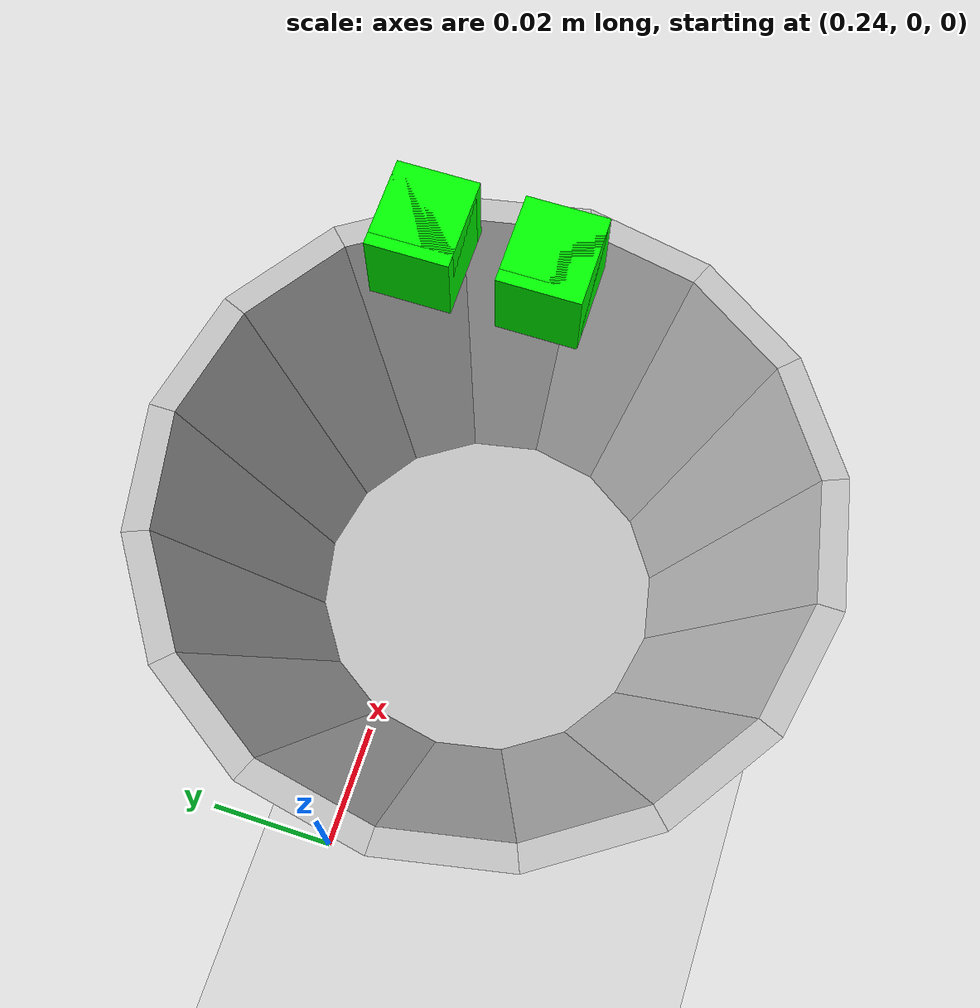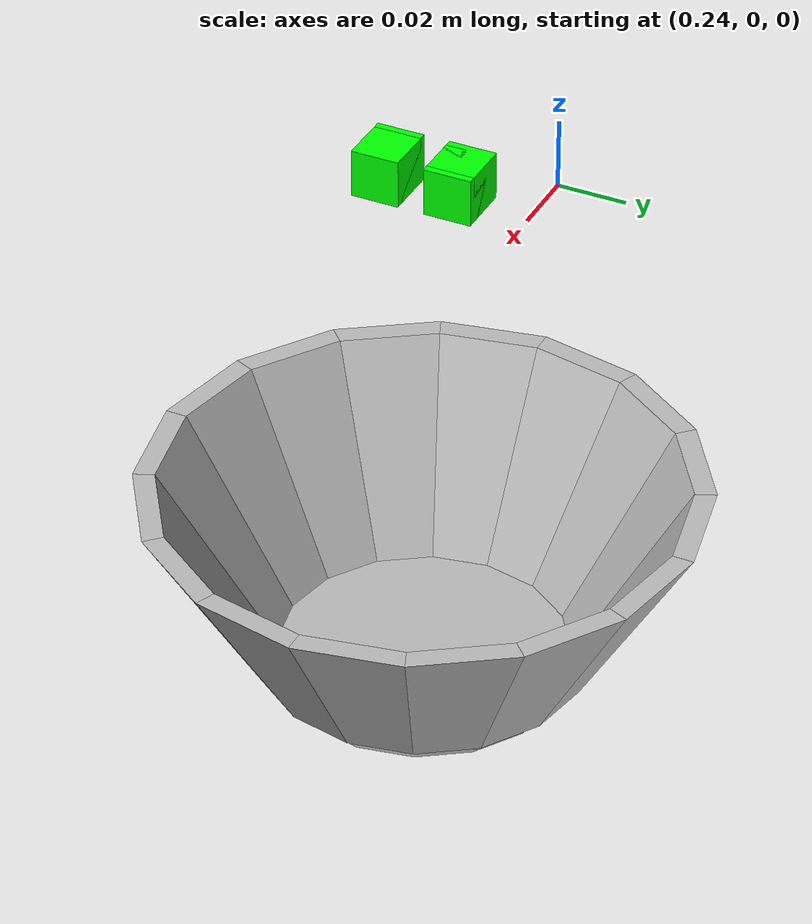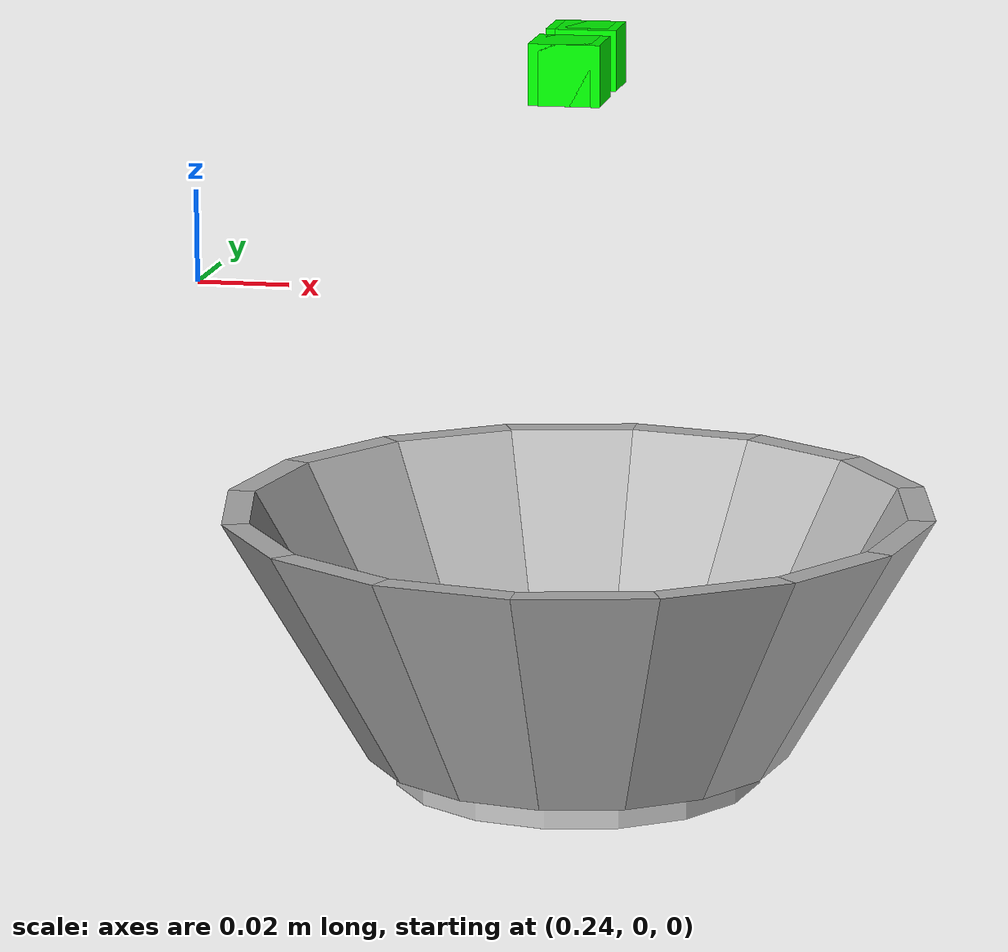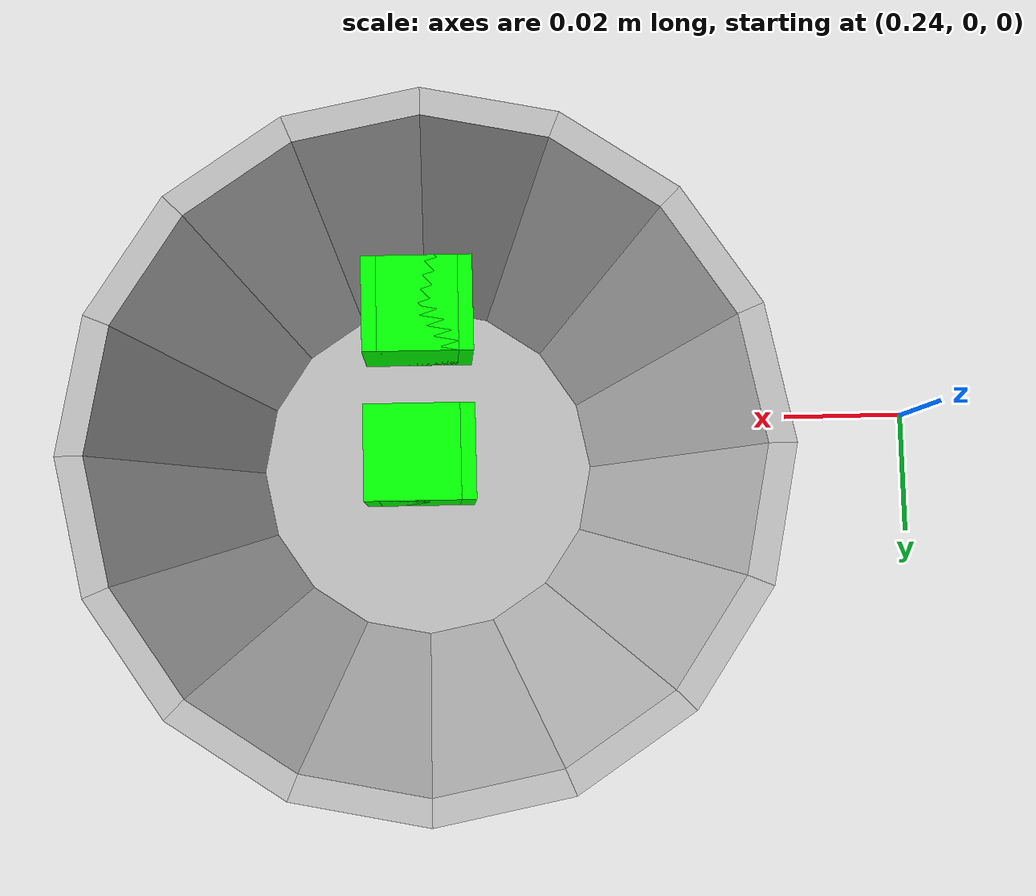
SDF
<?xml version="1.0" ?>
<sdf version="1.7">
  <world name="stir_world">
    <scene>
      <shadows>0</shadows>
    </scene>

    <include>
      <uri>model://sun</uri>
    </include>

    <model name="ground_plane">
      <include>
        <uri>model://ground_plane</uri>
        <pose>0 0 -0.5 0 0 0</pose>
      </include>
    </model>

    <model name="cooking_bowl">
      <include>
        <uri>model://cooking_bowl</uri>
        <pose>0.323 0 -0.106 0 0 0</pose>
        <static>true</static>
      </include>
    </model>

    <model name="ingredient0">
      <include>
        <uri>model://ingredient_cube</uri>
        <pose>0.324 0.01 0.05 0 0 0</pose>
      </include>
    </model>

    <model name="ingredient1">
      <include>
        <uri>model://ingredient_cube</uri>
        <pose>0.324 -0.01 0.05 0 0 0</pose>
      </include>
    </model>

    <model name="ingredient2">
      <include>
        <uri>model://ingredient_cube</uri>
        <pose>0.322 0.01 0.05 0 0 0</pose>
      </include>
    </model>

    <model name="ingredient3">
      <include>
        <uri>model://ingredient_cube</uri>
        <pose>0.322 -0.01 0.05 0 0 0</pose>
      </include>
    </model>

    <plugin name="gazebo_bridge" filename="libgazebo_bridge.so"/>
  </world>
</sdf>

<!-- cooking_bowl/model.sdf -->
<sdf version="1.7">
  <model name="cooking_bowl">
    <pose>0 0 0 0 0 0</pose>
    <static>true</static>
    <link name="bottom_plate">
      <inertial>
        <mass>0.01</mass>
      </inertial>
      <collision name="collision">
        <geometry>
          <mesh>
            <uri>model://cooking_bowl/meshes/cooking_bowl_bottom.stl</uri>
          </mesh>
        </geometry>
      </collision>
      <visual name="visual">
        <geometry>
          <mesh>
            <uri>model://cooking_bowl/meshes/cooking_bowl_bottom.stl</uri>
          </mesh>
        </geometry>
      </visual>
    </link>
    <link name="side_fragment_0">
      <inertial>
        <mass>0.01</mass>
      </inertial>
      <collision name="collision">
       <pose>0 0 0 0 0 0.0</pose>
        <geometry>
          <mesh>
            <uri>model://cooking_bowl/meshes/cooking_bowl_fragment.stl</uri>
          </mesh>
        </geometry>
      </collision>
      <visual name="visual">
       <pose>0 0 0 0 0 0.0</pose>
        <geometry>
          <mesh>
            <uri>model://cooking_bowl/meshes/cooking_bowl_fragment.stl</uri>
          </mesh>
        </geometry>
      </visual>
    </link>
    <link name="side_fragment_1">
      <inertial>
        <mass>0.01</mass>
      </inertial>
      <collision name="collision">
       <pose>0 0 0 0 0 0.39269908169872414</pose>
        <geometry>
          <mesh>
            <uri>model://cooking_bowl/meshes/cooking_bowl_fragment.stl</uri>
          </mesh>
        </geometry>
      </collision>
      <visual name="visual">
       <pose>0 0 0 0 0 0.39269908169872414</pose>
        <geometry>
          <mesh>
            <uri>model://cooking_bowl/meshes/cooking_bowl_fragment.stl</uri>
          </mesh>
        </geometry>
      </visual>
    </link>
    <link name="side_fragment_2">
      <inertial>
        <mass>0.01</mass>
      </inertial>
      <collision name="collision">
       <pose>0 0 0 0 0 0.7853981633974483</pose>
        <geometry>
          <mesh>
            <uri>model://cooking_bowl/meshes/cooking_bowl_fragment.stl</uri>
          </mesh>
        </geometry>
      </collision>
      <visual name="visual">
       <pose>0 0 0 0 0 0.7853981633974483</pose>
        <geometry>
          <mesh>
            <uri>model://cooking_bowl/meshes/cooking_bowl_fragment.stl</uri>
          </mesh>
        </geometry>
      </visual>
    </link>
    <link name="side_fragment_3">
      <inertial>
        <mass>0.01</mass>
      </inertial>
      <collision name="collision">
       <pose>0 0 0 0 0 1.1780972450961724</pose>
        <geometry>
          <mesh>
            <uri>model://cooking_bowl/meshes/cooking_bowl_fragment.stl</uri>
          </mesh>
        </geometry>
      </collision>
      <visual name="visual">
       <pose>0 0 0 0 0 1.1780972450961724</pose>
        <geometry>
          <mesh>
            <uri>model://cooking_bowl/meshes/cooking_bowl_fragment.stl</uri>
          </mesh>
        </geometry>
      </visual>
    </link>
    <link name="side_fragment_4">
      <inertial>
        <mass>0.01</mass>
      </inertial>
      <collision name="collision">
       <pose>0 0 0 0 0 1.5707963267948966</pose>
        <geometry>
          <mesh>
            <uri>model://cooking_bowl/meshes/cooking_bowl_fragment.stl</uri>
          </mesh>
        </geometry>
      </collision>
      <visual name="visual">
       <pose>0 0 0 0 0 1.5707963267948966</pose>
        <geometry>
          <mesh>
            <uri>model://cooking_bowl/meshes/cooking_bowl_fragment.stl</uri>
          </mesh>
        </geometry>
      </visual>
    </link>
    <link name="side_fragment_5">
      <inertial>
        <mass>0.01</mass>
      </inertial>
      <collision name="collision">
       <pose>0 0 0 0 0 1.9634954084936207</pose>
        <geometry>
          <mesh>
            <uri>model://cooking_bowl/meshes/cooking_bowl_fragment.stl</uri>
          </mesh>
        </geometry>
      </collision>
      <visual name="visual">
       <pose>0 0 0 0 0 1.9634954084936207</pose>
        <geometry>
          <mesh>
            <uri>model://cooking_bowl/meshes/cooking_bowl_fragment.stl</uri>
          </mesh>
        </geometry>
      </visual>
    </link>
    <link name="side_fragment_6">
      <inertial>
        <mass>0.01</mass>
      </inertial>
      <collision name="collision">
       <pose>0 0 0 0 0 2.356194490192345</pose>
        <geometry>
          <mesh>
            <uri>model://cooking_bowl/meshes/cooking_bowl_fragment.stl</uri>
          </mesh>
        </geometry>
      </collision>
      <visual name="visual">
       <pose>0 0 0 0 0 2.356194490192345</pose>
        <geometry>
          <mesh>
            <uri>model://cooking_bowl/meshes/cooking_bowl_fragment.stl</uri>
          </mesh>
        </geometry>
      </visual>
    </link>
    <link name="side_fragment_7">
      <inertial>
        <mass>0.01</mass>
      </inertial>
      <collision name="collision">
       <pose>0 0 0 0 0 2.748893571891069</pose>
        <geometry>
          <mesh>
            <uri>model://cooking_bowl/meshes/cooking_bowl_fragment.stl</uri>
          </mesh>
        </geometry>
      </collision>
      <visual name="visual">
       <pose>0 0 0 0 0 2.748893571891069</pose>
        <geometry>
          <mesh>
            <uri>model://cooking_bowl/meshes/cooking_bowl_fragment.stl</uri>
          </mesh>
        </geometry>
      </visual>
    </link>
    <link name="side_fragment_8">
      <inertial>
        <mass>0.01</mass>
      </inertial>
      <collision name="collision">
       <pose>0 0 0 0 0 3.141592653589793</pose>
        <geometry>
          <mesh>
            <uri>model://cooking_bowl/meshes/cooking_bowl_fragment.stl</uri>
          </mesh>
        </geometry>
      </collision>
      <visual name="visual">
       <pose>0 0 0 0 0 3.141592653589793</pose>
        <geometry>
          <mesh>
            <uri>model://cooking_bowl/meshes/cooking_bowl_fragment.stl</uri>
          </mesh>
        </geometry>
      </visual>
    </link>
    <link name="side_fragment_9">
      <inertial>
        <mass>0.01</mass>
      </inertial>
      <collision name="collision">
       <pose>0 0 0 0 0 3.5342917352885173</pose>
        <geometry>
          <mesh>
            <uri>model://cooking_bowl/meshes/cooking_bowl_fragment.stl</uri>
          </mesh>
        </geometry>
      </collision>
      <visual name="visual">
       <pose>0 0 0 0 0 3.5342917352885173</pose>
        <geometry>
          <mesh>
            <uri>model://cooking_bowl/meshes/cooking_bowl_fragment.stl</uri>
          </mesh>
        </geometry>
      </visual>
    </link>
    <link name="side_fragment_10">
      <inertial>
        <mass>0.01</mass>
      </inertial>
      <collision name="collision">
       <pose>0 0 0 0 0 3.9269908169872414</pose>
        <geometry>
          <mesh>
            <uri>model://cooking_bowl/meshes/cooking_bowl_fragment.stl</uri>
          </mesh>
        </geometry>
      </collision>
      <visual name="visual">
       <pose>0 0 0 0 0 3.9269908169872414</pose>
        <geometry>
          <mesh>
            <uri>model://cooking_bowl/meshes/cooking_bowl_fragment.stl</uri>
          </mesh>
        </geometry>
      </visual>
    </link>
    <link name="side_fragment_11">
      <inertial>
        <mass>0.01</mass>
      </inertial>
      <collision name="collision">
       <pose>0 0 0 0 0 4.319689898685965</pose>
        <geometry>
          <mesh>
            <uri>model://cooking_bowl/meshes/cooking_bowl_fragment.stl</uri>
          </mesh>
        </geometry>
      </collision>
      <visual name="visual">
       <pose>0 0 0 0 0 4.319689898685965</pose>
        <geometry>
          <mesh>
            <uri>model://cooking_bowl/meshes/cooking_bowl_fragment.stl</uri>
          </mesh>
        </geometry>
      </visual>
    </link>
    <link name="side_fragment_12">
      <inertial>
        <mass>0.01</mass>
      </inertial>
      <collision name="collision">
       <pose>0 0 0 0 0 4.71238898038469</pose>
        <geometry>
          <mesh>
            <uri>model://cooking_bowl/meshes/cooking_bowl_fragment.stl</uri>
          </mesh>
        </geometry>
      </collision>
      <visual name="visual">
       <pose>0 0 0 0 0 4.71238898038469</pose>
        <geometry>
          <mesh>
            <uri>model://cooking_bowl/meshes/cooking_bowl_fragment.stl</uri>
          </mesh>
        </geometry>
      </visual>
    </link>
    <link name="side_fragment_13">
      <inertial>
        <mass>0.01</mass>
      </inertial>
      <collision name="collision">
       <pose>0 0 0 0 0 5.105088062083414</pose>
        <geometry>
          <mesh>
            <uri>model://cooking_bowl/meshes/cooking_bowl_fragment.stl</uri>
          </mesh>
        </geometry>
      </collision>
      <visual name="visual">
       <pose>0 0 0 0 0 5.105088062083414</pose>
        <geometry>
          <mesh>
            <uri>model://cooking_bowl/meshes/cooking_bowl_fragment.stl</uri>
          </mesh>
        </geometry>
      </visual>
    </link>
    <link name="side_fragment_14">
      <inertial>
        <mass>0.01</mass>
      </inertial>
      <collision name="collision">
       <pose>0 0 0 0 0 5.497787143782138</pose>
        <geometry>
          <mesh>
            <uri>model://cooking_bowl/meshes/cooking_bowl_fragment.stl</uri>
          </mesh>
        </geometry>
      </collision>
      <visual name="visual">
       <pose>0 0 0 0 0 5.497787143782138</pose>
        <geometry>
          <mesh>
            <uri>model://cooking_bowl/meshes/cooking_bowl_fragment.stl</uri>
          </mesh>
        </geometry>
      </visual>
    </link>
    <link name="side_fragment_15">
      <inertial>
        <mass>0.01</mass>
      </inertial>
      <collision name="collision">
       <pose>0 0 0 0 0 5.890486225480862</pose>
        <geometry>
          <mesh>
            <uri>model://cooking_bowl/meshes/cooking_bowl_fragment.stl</uri>
          </mesh>
        </geometry>
      </collision>
      <visual name="visual">
       <pose>0 0 0 0 0 5.890486225480862</pose>
        <geometry>
          <mesh>
            <uri>model://cooking_bowl/meshes/cooking_bowl_fragment.stl</uri>
          </mesh>
        </geometry>
      </visual>
    </link>
  </model>
</sdf>

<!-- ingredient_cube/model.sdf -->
<sdf version="1.7">
  <model name="ingredient_cube">
    <link name="link">
      <visual name="visual">
        <geometry>
          <box>
            <size>0.013 0.013 0.013</size>
          </box>
        </geometry>
        <material>
          <ambient>0 1 0 1</ambient>
        </material>
      </visual>
      <collision name="collision">
        <geometry>
          <box>
            <size>0.013 0.013 0.013</size>
          </box>
        </geometry>
      </collision>
    </link>
  </model>
</sdf>
